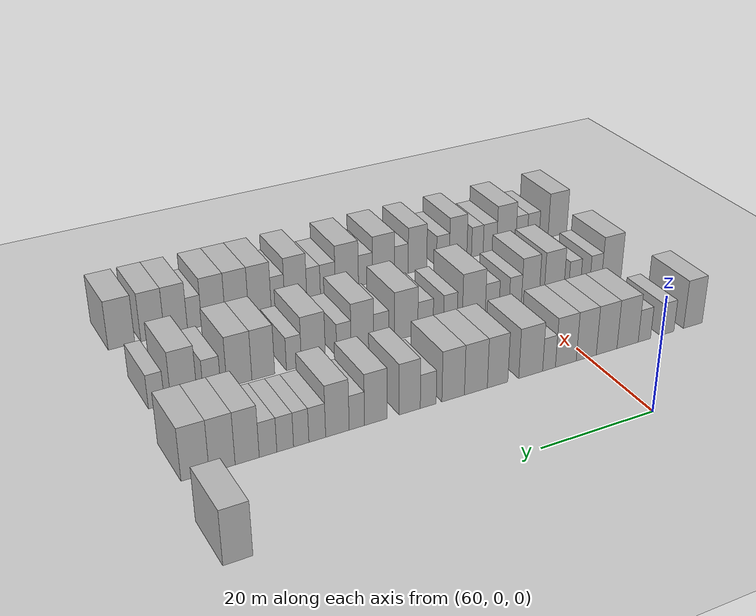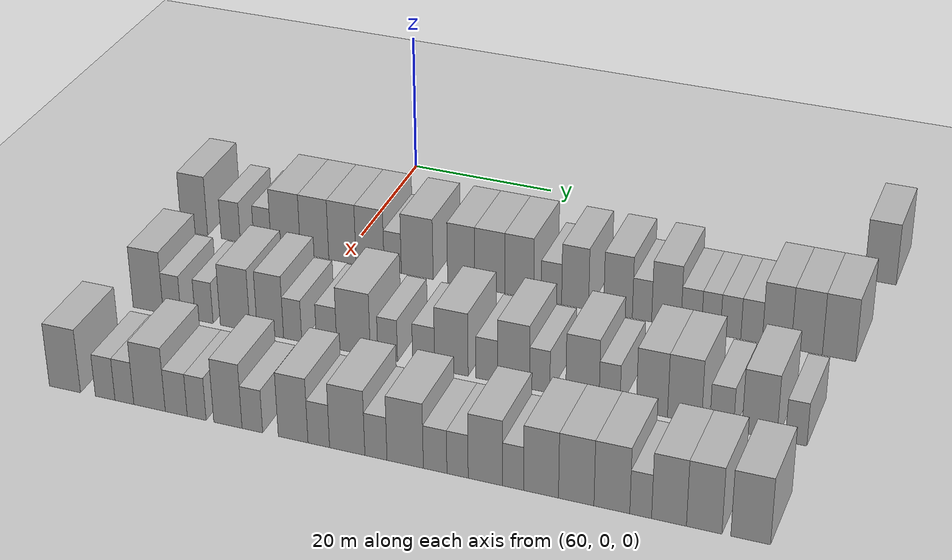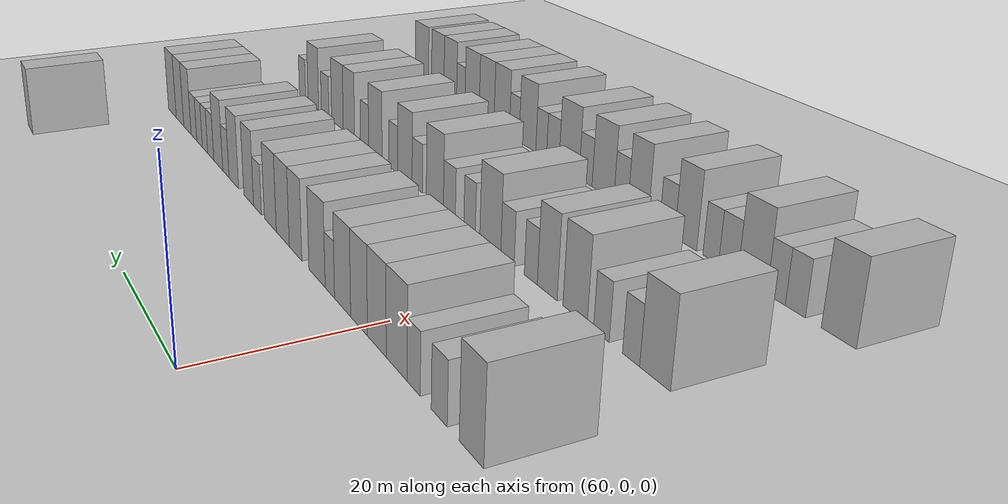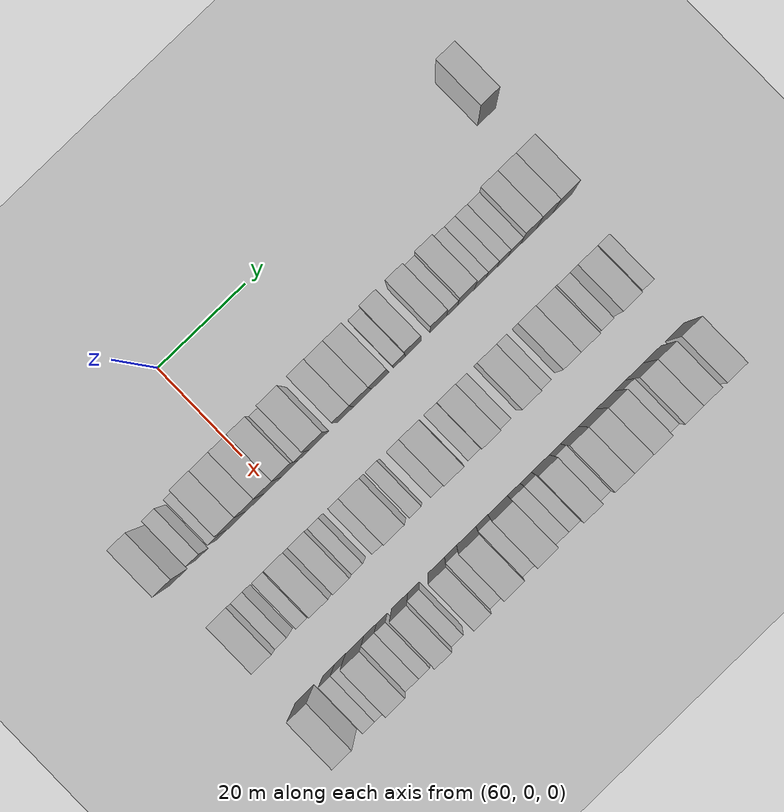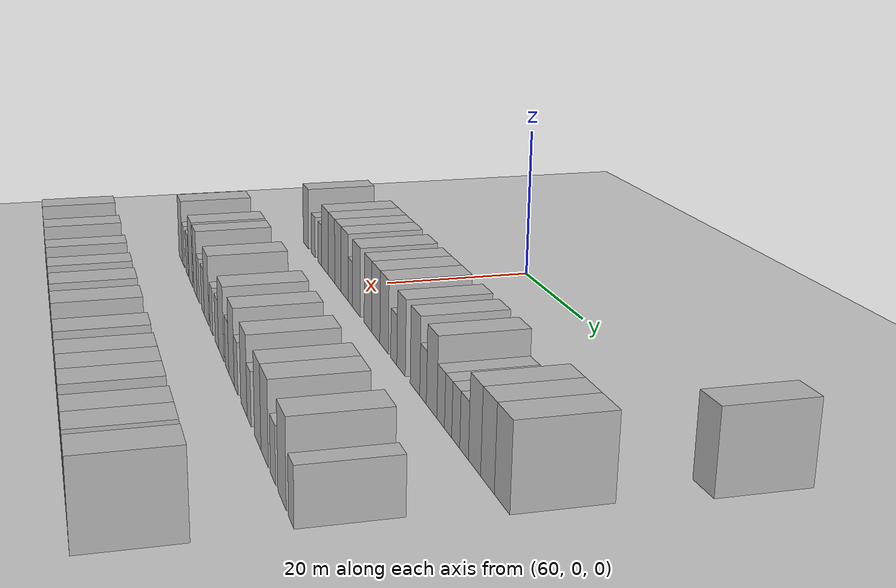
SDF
<sdf version="1.6">
 <world name="default">
  <include>
   <name>ground_plane_2</name>
   <uri>model://HANNAS_ground_plane</uri>
   <pose>100 0 0  0 0 0</pose>
  </include>
  <model name="building_458">
   <static>1</static>
   <pose>63.0000 67.6503 0 0.000000 0.000000 0.000000</pose>
   <link name="link">
    <pose>0 0 4.50 0 0 0</pose>
    <collision name="collision"><geometry><box><size>10.0000 4.1570 9.0000</size></box></geometry></collision>
    <visual name="visual">
     <cast_shadows>0</cast_shadows>
     <geometry><box><size>10.0000 4.1570 9.0000</size></box></geometry>
     <material>
      <script>
       <uri>model://HANNAS_wall/materials/scripts</uri>
       <uri>model://HANNAS_wall/materials/textures</uri>
       <name>vrc/HANNAS_wall</name>
      </script>
     </material>
    </visual>
   </link>
  </model>
  <model name="building_606">
   <static>1</static>
   <pose>82.0000 -21.2546 0 0.000000 0.000000 0.000000</pose>
   <link name="link">
    <pose>0 0 4.50 0 0 0</pose>
    <collision name="collision"><geometry><box><size>10.0000 3.9008 9.0000</size></box></geometry></collision>
    <visual name="visual">
     <cast_shadows>0</cast_shadows>
     <geometry><box><size>10.0000 3.9008 9.0000</size></box></geometry>
     <material>
      <script>
       <uri>model://HANNAS_wall/materials/scripts</uri>
       <uri>model://HANNAS_wall/materials/textures</uri>
       <name>vrc/HANNAS_wall</name>
      </script>
     </material>
    </visual>
   </link>
  </model>
  <model name="building_607">
   <static>1</static>
   <pose>82.0000 -15.8991 0 0.000000 0.000000 0.000000</pose>
   <link name="link">
    <pose>0 0 3.00 0 0 0</pose>
    <collision name="collision"><geometry><box><size>10.0000 2.8103 6.0000</size></box></geometry></collision>
    <visual name="visual">
     <cast_shadows>0</cast_shadows>
     <geometry><box><size>10.0000 2.8103 6.0000</size></box></geometry>
     <material>
      <script>
       <uri>model://HANNAS_wall/materials/scripts</uri>
       <uri>model://HANNAS_wall/materials/textures</uri>
       <name>vrc/HANNAS_wall</name>
      </script>
     </material>
    </visual>
   </link>
  </model>
  <model name="building_608">
   <static>1</static>
   <pose>82.0000 -11.2443 0 0.000000 0.000000 0.000000</pose>
   <link name="link">
    <pose>0 0 3.00 0 0 0</pose>
    <collision name="collision"><geometry><box><size>10.0000 2.4992 6.0000</size></box></geometry></collision>
    <visual name="visual">
     <cast_shadows>0</cast_shadows>
     <geometry><box><size>10.0000 2.4992 6.0000</size></box></geometry>
     <material>
      <script>
       <uri>model://HANNAS_wall/materials/scripts</uri>
       <uri>model://HANNAS_wall/materials/textures</uri>
       <name>vrc/HANNAS_wall</name>
      </script>
     </material>
    </visual>
   </link>
  </model>
  <model name="building_609">
   <static>1</static>
   <pose>82.0000 -7.8743 0 0.000000 0.000000 0.000000</pose>
   <link name="link">
    <pose>0 0 4.50 0 0 0</pose>
    <collision name="collision"><geometry><box><size>10.0000 4.2407 9.0000</size></box></geometry></collision>
    <visual name="visual">
     <cast_shadows>0</cast_shadows>
     <geometry><box><size>10.0000 4.2407 9.0000</size></box></geometry>
     <material>
      <script>
       <uri>model://HANNAS_wall/materials/scripts</uri>
       <uri>model://HANNAS_wall/materials/textures</uri>
       <name>vrc/HANNAS_wall</name>
      </script>
     </material>
    </visual>
   </link>
  </model>
  <model name="building_610">
   <static>1</static>
   <pose>82.0000 -3.7192 0 0.000000 0.000000 0.000000</pose>
   <link name="link">
    <pose>0 0 4.50 0 0 0</pose>
    <collision name="collision"><geometry><box><size>10.0000 4.0696 9.0000</size></box></geometry></collision>
    <visual name="visual">
     <cast_shadows>0</cast_shadows>
     <geometry><box><size>10.0000 4.0696 9.0000</size></box></geometry>
     <material>
      <script>
       <uri>model://HANNAS_wall/materials/scripts</uri>
       <uri>model://HANNAS_wall/materials/textures</uri>
       <name>vrc/HANNAS_wall</name>
      </script>
     </material>
    </visual>
   </link>
  </model>
  <model name="building_611">
   <static>1</static>
   <pose>82.0000 0.2580 0 0.000000 0.000000 0.000000</pose>
   <link name="link">
    <pose>0 0 4.50 0 0 0</pose>
    <collision name="collision"><geometry><box><size>10.0000 3.8847 9.0000</size></box></geometry></collision>
    <visual name="visual">
     <cast_shadows>0</cast_shadows>
     <geometry><box><size>10.0000 3.8847 9.0000</size></box></geometry>
     <material>
      <script>
       <uri>model://HANNAS_wall/materials/scripts</uri>
       <uri>model://HANNAS_wall/materials/textures</uri>
       <name>vrc/HANNAS_wall</name>
      </script>
     </material>
    </visual>
   </link>
  </model>
  <model name="building_612">
   <static>1</static>
   <pose>82.0000 4.1869 0 0.000000 0.000000 0.000000</pose>
   <link name="link">
    <pose>0 0 4.50 0 0 0</pose>
    <collision name="collision"><geometry><box><size>10.0000 3.9731 9.0000</size></box></geometry></collision>
    <visual name="visual">
     <cast_shadows>0</cast_shadows>
     <geometry><box><size>10.0000 3.9731 9.0000</size></box></geometry>
     <material>
      <script>
       <uri>model://HANNAS_wall/materials/scripts</uri>
       <uri>model://HANNAS_wall/materials/textures</uri>
       <name>vrc/HANNAS_wall</name>
      </script>
     </material>
    </visual>
   </link>
  </model>
  <model name="building_613">
   <static>1</static>
   <pose>82.0000 7.3832 0 0.000000 0.000000 0.000000</pose>
   <link name="link">
    <pose>0 0 3.00 0 0 0</pose>
    <collision name="collision"><geometry><box><size>10.0000 2.4195 6.0000</size></box></geometry></collision>
    <visual name="visual">
     <cast_shadows>0</cast_shadows>
     <geometry><box><size>10.0000 2.4195 6.0000</size></box></geometry>
     <material>
      <script>
       <uri>model://HANNAS_wall/materials/scripts</uri>
       <uri>model://HANNAS_wall/materials/textures</uri>
       <name>vrc/HANNAS_wall</name>
      </script>
     </material>
    </visual>
   </link>
  </model>
  <model name="building_614">
   <static>1</static>
   <pose>82.0000 10.8108 0 0.000000 0.000000 0.000000</pose>
   <link name="link">
    <pose>0 0 4.50 0 0 0</pose>
    <collision name="collision"><geometry><box><size>10.0000 4.4359 9.0000</size></box></geometry></collision>
    <visual name="visual">
     <cast_shadows>0</cast_shadows>
     <geometry><box><size>10.0000 4.4359 9.0000</size></box></geometry>
     <material>
      <script>
       <uri>model://HANNAS_wall/materials/scripts</uri>
       <uri>model://HANNAS_wall/materials/textures</uri>
       <name>vrc/HANNAS_wall</name>
      </script>
     </material>
    </visual>
   </link>
  </model>
  <model name="building_615">
   <static>1</static>
   <pose>82.0000 16.8968 0 0.000000 0.000000 0.000000</pose>
   <link name="link">
    <pose>0 0 4.50 0 0 0</pose>
    <collision name="collision"><geometry><box><size>10.0000 3.7361 9.0000</size></box></geometry></collision>
    <visual name="visual">
     <cast_shadows>0</cast_shadows>
     <geometry><box><size>10.0000 3.7361 9.0000</size></box></geometry>
     <material>
      <script>
       <uri>model://HANNAS_wall/materials/scripts</uri>
       <uri>model://HANNAS_wall/materials/textures</uri>
       <name>vrc/HANNAS_wall</name>
      </script>
     </material>
    </visual>
   </link>
  </model>
  <model name="building_616">
   <static>1</static>
   <pose>82.0000 20.8107 0 0.000000 0.000000 0.000000</pose>
   <link name="link">
    <pose>0 0 4.50 0 0 0</pose>
    <collision name="collision"><geometry><box><size>10.0000 4.0918 9.0000</size></box></geometry></collision>
    <visual name="visual">
     <cast_shadows>0</cast_shadows>
     <geometry><box><size>10.0000 4.0918 9.0000</size></box></geometry>
     <material>
      <script>
       <uri>model://HANNAS_wall/materials/scripts</uri>
       <uri>model://HANNAS_wall/materials/textures</uri>
       <name>vrc/HANNAS_wall</name>
      </script>
     </material>
    </visual>
   </link>
  </model>
  <model name="building_617">
   <static>1</static>
   <pose>82.0000 24.8374 0 0.000000 0.000000 0.000000</pose>
   <link name="link">
    <pose>0 0 4.50 0 0 0</pose>
    <collision name="collision"><geometry><box><size>10.0000 3.9616 9.0000</size></box></geometry></collision>
    <visual name="visual">
     <cast_shadows>0</cast_shadows>
     <geometry><box><size>10.0000 3.9616 9.0000</size></box></geometry>
     <material>
      <script>
       <uri>model://HANNAS_wall/materials/scripts</uri>
       <uri>model://HANNAS_wall/materials/textures</uri>
       <name>vrc/HANNAS_wall</name>
      </script>
     </material>
    </visual>
   </link>
  </model>
  <model name="building_618">
   <static>1</static>
   <pose>82.0000 29.1905 0 0.000000 0.000000 0.000000</pose>
   <link name="link">
    <pose>0 0 3.00 0 0 0</pose>
    <collision name="collision"><geometry><box><size>10.0000 2.7445 6.0000</size></box></geometry></collision>
    <visual name="visual">
     <cast_shadows>0</cast_shadows>
     <geometry><box><size>10.0000 2.7445 6.0000</size></box></geometry>
     <material>
      <script>
       <uri>model://HANNAS_wall/materials/scripts</uri>
       <uri>model://HANNAS_wall/materials/textures</uri>
       <name>vrc/HANNAS_wall</name>
      </script>
     </material>
    </visual>
   </link>
  </model>
  <model name="building_619">
   <static>1</static>
   <pose>82.0000 32.3657 0 0.000000 0.000000 0.000000</pose>
   <link name="link">
    <pose>0 0 4.50 0 0 0</pose>
    <collision name="collision"><geometry><box><size>10.0000 3.6060 9.0000</size></box></geometry></collision>
    <visual name="visual">
     <cast_shadows>0</cast_shadows>
     <geometry><box><size>10.0000 3.6060 9.0000</size></box></geometry>
     <material>
      <script>
       <uri>model://HANNAS_wall/materials/scripts</uri>
       <uri>model://HANNAS_wall/materials/textures</uri>
       <name>vrc/HANNAS_wall</name>
      </script>
     </material>
    </visual>
   </link>
  </model>
  <model name="building_620">
   <static>1</static>
   <pose>82.0000 38.0632 0 0.000000 0.000000 0.000000</pose>
   <link name="link">
    <pose>0 0 4.50 0 0 0</pose>
    <collision name="collision"><geometry><box><size>10.0000 3.7889 9.0000</size></box></geometry></collision>
    <visual name="visual">
     <cast_shadows>0</cast_shadows>
     <geometry><box><size>10.0000 3.7889 9.0000</size></box></geometry>
     <material>
      <script>
       <uri>model://HANNAS_wall/materials/scripts</uri>
       <uri>model://HANNAS_wall/materials/textures</uri>
       <name>vrc/HANNAS_wall</name>
      </script>
     </material>
    </visual>
   </link>
  </model>
  <model name="building_621">
   <static>1</static>
   <pose>82.0000 41.2232 0 0.000000 0.000000 0.000000</pose>
   <link name="link">
    <pose>0 0 3.00 0 0 0</pose>
    <collision name="collision"><geometry><box><size>10.0000 2.5311 6.0000</size></box></geometry></collision>
    <visual name="visual">
     <cast_shadows>0</cast_shadows>
     <geometry><box><size>10.0000 2.5311 6.0000</size></box></geometry>
     <material>
      <script>
       <uri>model://HANNAS_wall/materials/scripts</uri>
       <uri>model://HANNAS_wall/materials/textures</uri>
       <name>vrc/HANNAS_wall</name>
      </script>
     </material>
    </visual>
   </link>
  </model>
  <model name="building_622">
   <static>1</static>
   <pose>82.0000 44.4005 0 0.000000 0.000000 0.000000</pose>
   <link name="link">
    <pose>0 0 4.50 0 0 0</pose>
    <collision name="collision"><geometry><box><size>10.0000 3.8234 9.0000</size></box></geometry></collision>
    <visual name="visual">
     <cast_shadows>0</cast_shadows>
     <geometry><box><size>10.0000 3.8234 9.0000</size></box></geometry>
     <material>
      <script>
       <uri>model://HANNAS_wall/materials/scripts</uri>
       <uri>model://HANNAS_wall/materials/textures</uri>
       <name>vrc/HANNAS_wall</name>
      </script>
     </material>
    </visual>
   </link>
  </model>
  <model name="building_623">
   <static>1</static>
   <pose>82.0000 47.6516 0 0.000000 0.000000 0.000000</pose>
   <link name="link">
    <pose>0 0 3.00 0 0 0</pose>
    <collision name="collision"><geometry><box><size>10.0000 2.6788 6.0000</size></box></geometry></collision>
    <visual name="visual">
     <cast_shadows>0</cast_shadows>
     <geometry><box><size>10.0000 2.6788 6.0000</size></box></geometry>
     <material>
      <script>
       <uri>model://HANNAS_wall/materials/scripts</uri>
       <uri>model://HANNAS_wall/materials/textures</uri>
       <name>vrc/HANNAS_wall</name>
      </script>
     </material>
    </visual>
   </link>
  </model>
  <model name="building_624">
   <static>1</static>
   <pose>82.0000 50.2075 0 0.000000 0.000000 0.000000</pose>
   <link name="link">
    <pose>0 0 3.00 0 0 0</pose>
    <collision name="collision"><geometry><box><size>10.0000 2.4330 6.0000</size></box></geometry></collision>
    <visual name="visual">
     <cast_shadows>0</cast_shadows>
     <geometry><box><size>10.0000 2.4330 6.0000</size></box></geometry>
     <material>
      <script>
       <uri>model://HANNAS_wall/materials/scripts</uri>
       <uri>model://HANNAS_wall/materials/textures</uri>
       <name>vrc/HANNAS_wall</name>
      </script>
     </material>
    </visual>
   </link>
  </model>
  <model name="building_625">
   <static>1</static>
   <pose>82.0000 52.7319 0 0.000000 0.000000 0.000000</pose>
   <link name="link">
    <pose>0 0 3.00 0 0 0</pose>
    <collision name="collision"><geometry><box><size>10.0000 2.6159 6.0000</size></box></geometry></collision>
    <visual name="visual">
     <cast_shadows>0</cast_shadows>
     <geometry><box><size>10.0000 2.6159 6.0000</size></box></geometry>
     <material>
      <script>
       <uri>model://HANNAS_wall/materials/scripts</uri>
       <uri>model://HANNAS_wall/materials/textures</uri>
       <name>vrc/HANNAS_wall</name>
      </script>
     </material>
    </visual>
   </link>
  </model>
  <model name="building_626">
   <static>1</static>
   <pose>82.0000 55.4061 0 0.000000 0.000000 0.000000</pose>
   <link name="link">
    <pose>0 0 3.00 0 0 0</pose>
    <collision name="collision"><geometry><box><size>10.0000 2.7324 6.0000</size></box></geometry></collision>
    <visual name="visual">
     <cast_shadows>0</cast_shadows>
     <geometry><box><size>10.0000 2.7324 6.0000</size></box></geometry>
     <material>
      <script>
       <uri>model://HANNAS_wall/materials/scripts</uri>
       <uri>model://HANNAS_wall/materials/textures</uri>
       <name>vrc/HANNAS_wall</name>
      </script>
     </material>
    </visual>
   </link>
  </model>
  <model name="building_627">
   <static>1</static>
   <pose>82.0000 58.6127 0 0.000000 0.000000 0.000000</pose>
   <link name="link">
    <pose>0 0 4.50 0 0 0</pose>
    <collision name="collision"><geometry><box><size>10.0000 3.6809 9.0000</size></box></geometry></collision>
    <visual name="visual">
     <cast_shadows>0</cast_shadows>
     <geometry><box><size>10.0000 3.6809 9.0000</size></box></geometry>
     <material>
      <script>
       <uri>model://HANNAS_wall/materials/scripts</uri>
       <uri>model://HANNAS_wall/materials/textures</uri>
       <name>vrc/HANNAS_wall</name>
      </script>
     </material>
    </visual>
   </link>
  </model>
  <model name="building_628">
   <static>1</static>
   <pose>82.0000 62.4074 0 0.000000 0.000000 0.000000</pose>
   <link name="link">
    <pose>0 0 4.50 0 0 0</pose>
    <collision name="collision"><geometry><box><size>10.0000 3.9086 9.0000</size></box></geometry></collision>
    <visual name="visual">
     <cast_shadows>0</cast_shadows>
     <geometry><box><size>10.0000 3.9086 9.0000</size></box></geometry>
     <material>
      <script>
       <uri>model://HANNAS_wall/materials/scripts</uri>
       <uri>model://HANNAS_wall/materials/textures</uri>
       <name>vrc/HANNAS_wall</name>
      </script>
     </material>
    </visual>
   </link>
  </model>
  <model name="building_629">
   <static>1</static>
   <pose>82.0000 66.4455 0 0.000000 0.000000 0.000000</pose>
   <link name="link">
    <pose>0 0 4.50 0 0 0</pose>
    <collision name="collision"><geometry><box><size>10.0000 4.1675 9.0000</size></box></geometry></collision>
    <visual name="visual">
     <cast_shadows>0</cast_shadows>
     <geometry><box><size>10.0000 4.1675 9.0000</size></box></geometry>
     <material>
      <script>
       <uri>model://HANNAS_wall/materials/scripts</uri>
       <uri>model://HANNAS_wall/materials/textures</uri>
       <name>vrc/HANNAS_wall</name>
      </script>
     </material>
    </visual>
   </link>
  </model>
  <model name="building_790">
   <static>1</static>
   <pose>101.0000 -18.3477 0 0.000000 0.000000 0.000000</pose>
   <link name="link">
    <pose>0 0 4.50 0 0 0</pose>
    <collision name="collision"><geometry><box><size>10.0000 4.2520 9.0000</size></box></geometry></collision>
    <visual name="visual">
     <cast_shadows>0</cast_shadows>
     <geometry><box><size>10.0000 4.2520 9.0000</size></box></geometry>
     <material>
      <script>
       <uri>model://HANNAS_wall/materials/scripts</uri>
       <uri>model://HANNAS_wall/materials/textures</uri>
       <name>vrc/HANNAS_wall</name>
      </script>
     </material>
    </visual>
   </link>
  </model>
  <model name="building_791">
   <static>1</static>
   <pose>101.0000 -14.9692 0 0.000000 0.000000 0.000000</pose>
   <link name="link">
    <pose>0 0 3.00 0 0 0</pose>
    <collision name="collision"><geometry><box><size>10.0000 2.5051 6.0000</size></box></geometry></collision>
    <visual name="visual">
     <cast_shadows>0</cast_shadows>
     <geometry><box><size>10.0000 2.5051 6.0000</size></box></geometry>
     <material>
      <script>
       <uri>model://HANNAS_wall/materials/scripts</uri>
       <uri>model://HANNAS_wall/materials/textures</uri>
       <name>vrc/HANNAS_wall</name>
      </script>
     </material>
    </visual>
   </link>
  </model>
  <model name="building_792">
   <static>1</static>
   <pose>101.0000 -10.4750 0 0.000000 0.000000 0.000000</pose>
   <link name="link">
    <pose>0 0 3.00 0 0 0</pose>
    <collision name="collision"><geometry><box><size>10.0000 2.4832 6.0000</size></box></geometry></collision>
    <visual name="visual">
     <cast_shadows>0</cast_shadows>
     <geometry><box><size>10.0000 2.4832 6.0000</size></box></geometry>
     <material>
      <script>
       <uri>model://HANNAS_wall/materials/scripts</uri>
       <uri>model://HANNAS_wall/materials/textures</uri>
       <name>vrc/HANNAS_wall</name>
      </script>
     </material>
    </visual>
   </link>
  </model>
  <model name="building_793">
   <static>1</static>
   <pose>101.0000 -6.1856 0 0.000000 0.000000 0.000000</pose>
   <link name="link">
    <pose>0 0 4.50 0 0 0</pose>
    <collision name="collision"><geometry><box><size>10.0000 4.0957 9.0000</size></box></geometry></collision>
    <visual name="visual">
     <cast_shadows>0</cast_shadows>
     <geometry><box><size>10.0000 4.0957 9.0000</size></box></geometry>
     <material>
      <script>
       <uri>model://HANNAS_wall/materials/scripts</uri>
       <uri>model://HANNAS_wall/materials/textures</uri>
       <name>vrc/HANNAS_wall</name>
      </script>
     </material>
    </visual>
   </link>
  </model>
  <model name="building_794">
   <static>1</static>
   <pose>101.0000 -1.3371 0 0.000000 0.000000 0.000000</pose>
   <link name="link">
    <pose>0 0 4.50 0 0 0</pose>
    <collision name="collision"><geometry><box><size>10.0000 3.6012 9.0000</size></box></geometry></collision>
    <visual name="visual">
     <cast_shadows>0</cast_shadows>
     <geometry><box><size>10.0000 3.6012 9.0000</size></box></geometry>
     <material>
      <script>
       <uri>model://HANNAS_wall/materials/scripts</uri>
       <uri>model://HANNAS_wall/materials/textures</uri>
       <name>vrc/HANNAS_wall</name>
      </script>
     </material>
    </visual>
   </link>
  </model>
  <model name="building_795">
   <static>1</static>
   <pose>101.0000 1.7011 0 0.000000 0.000000 0.000000</pose>
   <link name="link">
    <pose>0 0 3.00 0 0 0</pose>
    <collision name="collision"><geometry><box><size>10.0000 2.4750 6.0000</size></box></geometry></collision>
    <visual name="visual">
     <cast_shadows>0</cast_shadows>
     <geometry><box><size>10.0000 2.4750 6.0000</size></box></geometry>
     <material>
      <script>
       <uri>model://HANNAS_wall/materials/scripts</uri>
       <uri>model://HANNAS_wall/materials/textures</uri>
       <name>vrc/HANNAS_wall</name>
      </script>
     </material>
    </visual>
   </link>
  </model>
  <model name="building_796">
   <static>1</static>
   <pose>101.0000 6.3035 0 0.000000 0.000000 0.000000</pose>
   <link name="link">
    <pose>0 0 3.00 0 0 0</pose>
    <collision name="collision"><geometry><box><size>10.0000 2.7299 6.0000</size></box></geometry></collision>
    <visual name="visual">
     <cast_shadows>0</cast_shadows>
     <geometry><box><size>10.0000 2.7299 6.0000</size></box></geometry>
     <material>
      <script>
       <uri>model://HANNAS_wall/materials/scripts</uri>
       <uri>model://HANNAS_wall/materials/textures</uri>
       <name>vrc/HANNAS_wall</name>
      </script>
     </material>
    </visual>
   </link>
  </model>
  <model name="building_797">
   <static>1</static>
   <pose>101.0000 9.9056 0 0.000000 0.000000 0.000000</pose>
   <link name="link">
    <pose>0 0 4.50 0 0 0</pose>
    <collision name="collision"><geometry><box><size>10.0000 4.4742 9.0000</size></box></geometry></collision>
    <visual name="visual">
     <cast_shadows>0</cast_shadows>
     <geometry><box><size>10.0000 4.4742 9.0000</size></box></geometry>
     <material>
      <script>
       <uri>model://HANNAS_wall/materials/scripts</uri>
       <uri>model://HANNAS_wall/materials/textures</uri>
       <name>vrc/HANNAS_wall</name>
      </script>
     </material>
    </visual>
   </link>
  </model>
  <model name="building_798">
   <static>1</static>
   <pose>101.0000 14.4424 0 0.000000 0.000000 0.000000</pose>
   <link name="link">
    <pose>0 0 3.00 0 0 0</pose>
    <collision name="collision"><geometry><box><size>10.0000 2.5995 6.0000</size></box></geometry></collision>
    <visual name="visual">
     <cast_shadows>0</cast_shadows>
     <geometry><box><size>10.0000 2.5995 6.0000</size></box></geometry>
     <material>
      <script>
       <uri>model://HANNAS_wall/materials/scripts</uri>
       <uri>model://HANNAS_wall/materials/textures</uri>
       <name>vrc/HANNAS_wall</name>
      </script>
     </material>
    </visual>
   </link>
  </model>
  <model name="building_799">
   <static>1</static>
   <pose>101.0000 19.1825 0 0.000000 0.000000 0.000000</pose>
   <link name="link">
    <pose>0 0 3.00 0 0 0</pose>
    <collision name="collision"><geometry><box><size>10.0000 2.8809 6.0000</size></box></geometry></collision>
    <visual name="visual">
     <cast_shadows>0</cast_shadows>
     <geometry><box><size>10.0000 2.8809 6.0000</size></box></geometry>
     <material>
      <script>
       <uri>model://HANNAS_wall/materials/scripts</uri>
       <uri>model://HANNAS_wall/materials/textures</uri>
       <name>vrc/HANNAS_wall</name>
      </script>
     </material>
    </visual>
   </link>
  </model>
  <model name="building_800">
   <static>1</static>
   <pose>101.0000 22.7941 0 0.000000 0.000000 0.000000</pose>
   <link name="link">
    <pose>0 0 4.50 0 0 0</pose>
    <collision name="collision"><geometry><box><size>10.0000 4.3423 9.0000</size></box></geometry></collision>
    <visual name="visual">
     <cast_shadows>0</cast_shadows>
     <geometry><box><size>10.0000 4.3423 9.0000</size></box></geometry>
     <material>
      <script>
       <uri>model://HANNAS_wall/materials/scripts</uri>
       <uri>model://HANNAS_wall/materials/textures</uri>
       <name>vrc/HANNAS_wall</name>
      </script>
     </material>
    </visual>
   </link>
  </model>
  <model name="building_801">
   <static>1</static>
   <pose>101.0000 27.3637 0 0.000000 0.000000 0.000000</pose>
   <link name="link">
    <pose>0 0 3.00 0 0 0</pose>
    <collision name="collision"><geometry><box><size>10.0000 2.7969 6.0000</size></box></geometry></collision>
    <visual name="visual">
     <cast_shadows>0</cast_shadows>
     <geometry><box><size>10.0000 2.7969 6.0000</size></box></geometry>
     <material>
      <script>
       <uri>model://HANNAS_wall/materials/scripts</uri>
       <uri>model://HANNAS_wall/materials/textures</uri>
       <name>vrc/HANNAS_wall</name>
      </script>
     </material>
    </visual>
   </link>
  </model>
  <model name="building_802">
   <static>1</static>
   <pose>101.0000 30.8039 0 0.000000 0.000000 0.000000</pose>
   <link name="link">
    <pose>0 0 4.50 0 0 0</pose>
    <collision name="collision"><geometry><box><size>10.0000 4.0835 9.0000</size></box></geometry></collision>
    <visual name="visual">
     <cast_shadows>0</cast_shadows>
     <geometry><box><size>10.0000 4.0835 9.0000</size></box></geometry>
     <material>
      <script>
       <uri>model://HANNAS_wall/materials/scripts</uri>
       <uri>model://HANNAS_wall/materials/textures</uri>
       <name>vrc/HANNAS_wall</name>
      </script>
     </material>
    </visual>
   </link>
  </model>
  <model name="building_803">
   <static>1</static>
   <pose>101.0000 34.1363 0 0.000000 0.000000 0.000000</pose>
   <link name="link">
    <pose>0 0 3.00 0 0 0</pose>
    <collision name="collision"><geometry><box><size>10.0000 2.5813 6.0000</size></box></geometry></collision>
    <visual name="visual">
     <cast_shadows>0</cast_shadows>
     <geometry><box><size>10.0000 2.5813 6.0000</size></box></geometry>
     <material>
      <script>
       <uri>model://HANNAS_wall/materials/scripts</uri>
       <uri>model://HANNAS_wall/materials/textures</uri>
       <name>vrc/HANNAS_wall</name>
      </script>
     </material>
    </visual>
   </link>
  </model>
  <model name="building_804">
   <static>1</static>
   <pose>101.0000 39.5192 0 0.000000 0.000000 0.000000</pose>
   <link name="link">
    <pose>0 0 4.50 0 0 0</pose>
    <collision name="collision"><geometry><box><size>10.0000 4.1844 9.0000</size></box></geometry></collision>
    <visual name="visual">
     <cast_shadows>0</cast_shadows>
     <geometry><box><size>10.0000 4.1844 9.0000</size></box></geometry>
     <material>
      <script>
       <uri>model://HANNAS_wall/materials/scripts</uri>
       <uri>model://HANNAS_wall/materials/textures</uri>
       <name>vrc/HANNAS_wall</name>
      </script>
     </material>
    </visual>
   </link>
  </model>
  <model name="building_805">
   <static>1</static>
   <pose>101.0000 42.9150 0 0.000000 0.000000 0.000000</pose>
   <link name="link">
    <pose>0 0 3.00 0 0 0</pose>
    <collision name="collision"><geometry><box><size>10.0000 2.6073 6.0000</size></box></geometry></collision>
    <visual name="visual">
     <cast_shadows>0</cast_shadows>
     <geometry><box><size>10.0000 2.6073 6.0000</size></box></geometry>
     <material>
      <script>
       <uri>model://HANNAS_wall/materials/scripts</uri>
       <uri>model://HANNAS_wall/materials/textures</uri>
       <name>vrc/HANNAS_wall</name>
      </script>
     </material>
    </visual>
   </link>
  </model>
  <model name="building_806">
   <static>1</static>
   <pose>101.0000 48.1481 0 0.000000 0.000000 0.000000</pose>
   <link name="link">
    <pose>0 0 4.50 0 0 0</pose>
    <collision name="collision"><geometry><box><size>10.0000 3.8589 9.0000</size></box></geometry></collision>
    <visual name="visual">
     <cast_shadows>0</cast_shadows>
     <geometry><box><size>10.0000 3.8589 9.0000</size></box></geometry>
     <material>
      <script>
       <uri>model://HANNAS_wall/materials/scripts</uri>
       <uri>model://HANNAS_wall/materials/textures</uri>
       <name>vrc/HANNAS_wall</name>
      </script>
     </material>
    </visual>
   </link>
  </model>
  <model name="building_807">
   <static>1</static>
   <pose>101.0000 52.1614 0 0.000000 0.000000 0.000000</pose>
   <link name="link">
    <pose>0 0 4.50 0 0 0</pose>
    <collision name="collision"><geometry><box><size>10.0000 4.1678 9.0000</size></box></geometry></collision>
    <visual name="visual">
     <cast_shadows>0</cast_shadows>
     <geometry><box><size>10.0000 4.1678 9.0000</size></box></geometry>
     <material>
      <script>
       <uri>model://HANNAS_wall/materials/scripts</uri>
       <uri>model://HANNAS_wall/materials/textures</uri>
       <name>vrc/HANNAS_wall</name>
      </script>
     </material>
    </visual>
   </link>
  </model>
  <model name="building_808">
   <static>1</static>
   <pose>101.0000 56.6790 0 0.000000 0.000000 0.000000</pose>
   <link name="link">
    <pose>0 0 3.00 0 0 0</pose>
    <collision name="collision"><geometry><box><size>10.0000 2.8674 6.0000</size></box></geometry></collision>
    <visual name="visual">
     <cast_shadows>0</cast_shadows>
     <geometry><box><size>10.0000 2.8674 6.0000</size></box></geometry>
     <material>
      <script>
       <uri>model://HANNAS_wall/materials/scripts</uri>
       <uri>model://HANNAS_wall/materials/textures</uri>
       <name>vrc/HANNAS_wall</name>
      </script>
     </material>
    </visual>
   </link>
  </model>
  <model name="building_809">
   <static>1</static>
   <pose>101.0000 61.2128 0 0.000000 0.000000 0.000000</pose>
   <link name="link">
    <pose>0 0 4.50 0 0 0</pose>
    <collision name="collision"><geometry><box><size>10.0000 4.2002 9.0000</size></box></geometry></collision>
    <visual name="visual">
     <cast_shadows>0</cast_shadows>
     <geometry><box><size>10.0000 4.2002 9.0000</size></box></geometry>
     <material>
      <script>
       <uri>model://HANNAS_wall/materials/scripts</uri>
       <uri>model://HANNAS_wall/materials/textures</uri>
       <name>vrc/HANNAS_wall</name>
      </script>
     </material>
    </visual>
   </link>
  </model>
  <model name="building_810">
   <static>1</static>
   <pose>101.0000 65.5942 0 0.000000 0.000000 0.000000</pose>
   <link name="link">
    <pose>0 0 3.00 0 0 0</pose>
    <collision name="collision"><geometry><box><size>10.0000 2.5627 6.0000</size></box></geometry></collision>
    <visual name="visual">
     <cast_shadows>0</cast_shadows>
     <geometry><box><size>10.0000 2.5627 6.0000</size></box></geometry>
     <material>
      <script>
       <uri>model://HANNAS_wall/materials/scripts</uri>
       <uri>model://HANNAS_wall/materials/textures</uri>
       <name>vrc/HANNAS_wall</name>
      </script>
     </material>
    </visual>
   </link>
  </model>
  <model name="building_957">
   <static>1</static>
   <pose>120.0000 -19.6756 0 0.000000 0.000000 0.000000</pose>
   <link name="link">
    <pose>0 0 4.50 0 0 0</pose>
    <collision name="collision"><geometry><box><size>10.0000 4.2132 9.0000</size></box></geometry></collision>
    <visual name="visual">
     <cast_shadows>0</cast_shadows>
     <geometry><box><size>10.0000 4.2132 9.0000</size></box></geometry>
     <material>
      <script>
       <uri>model://HANNAS_wall/materials/scripts</uri>
       <uri>model://HANNAS_wall/materials/textures</uri>
       <name>vrc/HANNAS_wall</name>
      </script>
     </material>
    </visual>
   </link>
  </model>
  <model name="building_958">
   <static>1</static>
   <pose>120.0000 -14.2486 0 0.000000 0.000000 0.000000</pose>
   <link name="link">
    <pose>0 0 3.00 0 0 0</pose>
    <collision name="collision"><geometry><box><size>10.0000 2.6409 6.0000</size></box></geometry></collision>
    <visual name="visual">
     <cast_shadows>0</cast_shadows>
     <geometry><box><size>10.0000 2.6409 6.0000</size></box></geometry>
     <material>
      <script>
       <uri>model://HANNAS_wall/materials/scripts</uri>
       <uri>model://HANNAS_wall/materials/textures</uri>
       <name>vrc/HANNAS_wall</name>
      </script>
     </material>
    </visual>
   </link>
  </model>
  <model name="building_959">
   <static>1</static>
   <pose>120.0000 -11.6679 0 0.000000 0.000000 0.000000</pose>
   <link name="link">
    <pose>0 0 3.00 0 0 0</pose>
    <collision name="collision"><geometry><box><size>10.0000 2.5207 6.0000</size></box></geometry></collision>
    <visual name="visual">
     <cast_shadows>0</cast_shadows>
     <geometry><box><size>10.0000 2.5207 6.0000</size></box></geometry>
     <material>
      <script>
       <uri>model://HANNAS_wall/materials/scripts</uri>
       <uri>model://HANNAS_wall/materials/textures</uri>
       <name>vrc/HANNAS_wall</name>
      </script>
     </material>
    </visual>
   </link>
  </model>
  <model name="building_960">
   <static>1</static>
   <pose>120.0000 -8.3268 0 0.000000 0.000000 0.000000</pose>
   <link name="link">
    <pose>0 0 4.50 0 0 0</pose>
    <collision name="collision"><geometry><box><size>10.0000 4.1615 9.0000</size></box></geometry></collision>
    <visual name="visual">
     <cast_shadows>0</cast_shadows>
     <geometry><box><size>10.0000 4.1615 9.0000</size></box></geometry>
     <material>
      <script>
       <uri>model://HANNAS_wall/materials/scripts</uri>
       <uri>model://HANNAS_wall/materials/textures</uri>
       <name>vrc/HANNAS_wall</name>
      </script>
     </material>
    </visual>
   </link>
  </model>
  <model name="building_961">
   <static>1</static>
   <pose>120.0000 -4.8008 0 0.000000 0.000000 0.000000</pose>
   <link name="link">
    <pose>0 0 3.00 0 0 0</pose>
    <collision name="collision"><geometry><box><size>10.0000 2.8905 6.0000</size></box></geometry></collision>
    <visual name="visual">
     <cast_shadows>0</cast_shadows>
     <geometry><box><size>10.0000 2.8905 6.0000</size></box></geometry>
     <material>
      <script>
       <uri>model://HANNAS_wall/materials/scripts</uri>
       <uri>model://HANNAS_wall/materials/textures</uri>
       <name>vrc/HANNAS_wall</name>
      </script>
     </material>
    </visual>
   </link>
  </model>
  <model name="building_962">
   <static>1</static>
   <pose>120.0000 -2.1224 0 0.000000 0.000000 0.000000</pose>
   <link name="link">
    <pose>0 0 3.00 0 0 0</pose>
    <collision name="collision"><geometry><box><size>10.0000 2.4662 6.0000</size></box></geometry></collision>
    <visual name="visual">
     <cast_shadows>0</cast_shadows>
     <geometry><box><size>10.0000 2.4662 6.0000</size></box></geometry>
     <material>
      <script>
       <uri>model://HANNAS_wall/materials/scripts</uri>
       <uri>model://HANNAS_wall/materials/textures</uri>
       <name>vrc/HANNAS_wall</name>
      </script>
     </material>
    </visual>
   </link>
  </model>
  <model name="building_963">
   <static>1</static>
   <pose>120.0000 1.9425 0 0.000000 0.000000 0.000000</pose>
   <link name="link">
    <pose>0 0 4.50 0 0 0</pose>
    <collision name="collision"><geometry><box><size>10.0000 3.6637 9.0000</size></box></geometry></collision>
    <visual name="visual">
     <cast_shadows>0</cast_shadows>
     <geometry><box><size>10.0000 3.6637 9.0000</size></box></geometry>
     <material>
      <script>
       <uri>model://HANNAS_wall/materials/scripts</uri>
       <uri>model://HANNAS_wall/materials/textures</uri>
       <name>vrc/HANNAS_wall</name>
      </script>
     </material>
    </visual>
   </link>
  </model>
  <model name="building_964">
   <static>1</static>
   <pose>120.0000 5.1042 0 0.000000 0.000000 0.000000</pose>
   <link name="link">
    <pose>0 0 3.00 0 0 0</pose>
    <collision name="collision"><geometry><box><size>10.0000 2.6596 6.0000</size></box></geometry></collision>
    <visual name="visual">
     <cast_shadows>0</cast_shadows>
     <geometry><box><size>10.0000 2.6596 6.0000</size></box></geometry>
     <material>
      <script>
       <uri>model://HANNAS_wall/materials/scripts</uri>
       <uri>model://HANNAS_wall/materials/textures</uri>
       <name>vrc/HANNAS_wall</name>
      </script>
     </material>
    </visual>
   </link>
  </model>
  <model name="building_965">
   <static>1</static>
   <pose>120.0000 10.3248 0 0.000000 0.000000 0.000000</pose>
   <link name="link">
    <pose>0 0 4.50 0 0 0</pose>
    <collision name="collision"><geometry><box><size>10.0000 3.7816 9.0000</size></box></geometry></collision>
    <visual name="visual">
     <cast_shadows>0</cast_shadows>
     <geometry><box><size>10.0000 3.7816 9.0000</size></box></geometry>
     <material>
      <script>
       <uri>model://HANNAS_wall/materials/scripts</uri>
       <uri>model://HANNAS_wall/materials/textures</uri>
       <name>vrc/HANNAS_wall</name>
      </script>
     </material>
    </visual>
   </link>
  </model>
  <model name="building_966">
   <static>1</static>
   <pose>120.0000 13.5783 0 0.000000 0.000000 0.000000</pose>
   <link name="link">
    <pose>0 0 3.00 0 0 0</pose>
    <collision name="collision"><geometry><box><size>10.0000 2.7254 6.0000</size></box></geometry></collision>
    <visual name="visual">
     <cast_shadows>0</cast_shadows>
     <geometry><box><size>10.0000 2.7254 6.0000</size></box></geometry>
     <material>
      <script>
       <uri>model://HANNAS_wall/materials/scripts</uri>
       <uri>model://HANNAS_wall/materials/textures</uri>
       <name>vrc/HANNAS_wall</name>
      </script>
     </material>
    </visual>
   </link>
  </model>
  <model name="building_967">
   <static>1</static>
   <pose>120.0000 17.1554 0 0.000000 0.000000 0.000000</pose>
   <link name="link">
    <pose>0 0 4.50 0 0 0</pose>
    <collision name="collision"><geometry><box><size>10.0000 4.4289 9.0000</size></box></geometry></collision>
    <visual name="visual">
     <cast_shadows>0</cast_shadows>
     <geometry><box><size>10.0000 4.4289 9.0000</size></box></geometry>
     <material>
      <script>
       <uri>model://HANNAS_wall/materials/scripts</uri>
       <uri>model://HANNAS_wall/materials/textures</uri>
       <name>vrc/HANNAS_wall</name>
      </script>
     </material>
    </visual>
   </link>
  </model>
  <model name="building_968">
   <static>1</static>
   <pose>120.0000 20.7475 0 0.000000 0.000000 0.000000</pose>
   <link name="link">
    <pose>0 0 3.00 0 0 0</pose>
    <collision name="collision"><geometry><box><size>10.0000 2.7553 6.0000</size></box></geometry></collision>
    <visual name="visual">
     <cast_shadows>0</cast_shadows>
     <geometry><box><size>10.0000 2.7553 6.0000</size></box></geometry>
     <material>
      <script>
       <uri>model://HANNAS_wall/materials/scripts</uri>
       <uri>model://HANNAS_wall/materials/textures</uri>
       <name>vrc/HANNAS_wall</name>
      </script>
     </material>
    </visual>
   </link>
  </model>
  <model name="building_969">
   <static>1</static>
   <pose>120.0000 24.3669 0 0.000000 0.000000 0.000000</pose>
   <link name="link">
    <pose>0 0 4.50 0 0 0</pose>
    <collision name="collision"><geometry><box><size>10.0000 4.4835 9.0000</size></box></geometry></collision>
    <visual name="visual">
     <cast_shadows>0</cast_shadows>
     <geometry><box><size>10.0000 4.4835 9.0000</size></box></geometry>
     <material>
      <script>
       <uri>model://HANNAS_wall/materials/scripts</uri>
       <uri>model://HANNAS_wall/materials/textures</uri>
       <name>vrc/HANNAS_wall</name>
      </script>
     </material>
    </visual>
   </link>
  </model>
  <model name="building_970">
   <static>1</static>
   <pose>120.0000 28.0488 0 0.000000 0.000000 0.000000</pose>
   <link name="link">
    <pose>0 0 3.00 0 0 0</pose>
    <collision name="collision"><geometry><box><size>10.0000 2.8802 6.0000</size></box></geometry></collision>
    <visual name="visual">
     <cast_shadows>0</cast_shadows>
     <geometry><box><size>10.0000 2.8802 6.0000</size></box></geometry>
     <material>
      <script>
       <uri>model://HANNAS_wall/materials/scripts</uri>
       <uri>model://HANNAS_wall/materials/textures</uri>
       <name>vrc/HANNAS_wall</name>
      </script>
     </material>
    </visual>
   </link>
  </model>
  <model name="building_971">
   <static>1</static>
   <pose>120.0000 30.7795 0 0.000000 0.000000 0.000000</pose>
   <link name="link">
    <pose>0 0 3.00 0 0 0</pose>
    <collision name="collision"><geometry><box><size>10.0000 2.5812 6.0000</size></box></geometry></collision>
    <visual name="visual">
     <cast_shadows>0</cast_shadows>
     <geometry><box><size>10.0000 2.5812 6.0000</size></box></geometry>
     <material>
      <script>
       <uri>model://HANNAS_wall/materials/scripts</uri>
       <uri>model://HANNAS_wall/materials/textures</uri>
       <name>vrc/HANNAS_wall</name>
      </script>
     </material>
    </visual>
   </link>
  </model>
  <model name="building_972">
   <static>1</static>
   <pose>120.0000 34.1424 0 0.000000 0.000000 0.000000</pose>
   <link name="link">
    <pose>0 0 4.50 0 0 0</pose>
    <collision name="collision"><geometry><box><size>10.0000 4.1445 9.0000</size></box></geometry></collision>
    <visual name="visual">
     <cast_shadows>0</cast_shadows>
     <geometry><box><size>10.0000 4.1445 9.0000</size></box></geometry>
     <material>
      <script>
       <uri>model://HANNAS_wall/materials/scripts</uri>
       <uri>model://HANNAS_wall/materials/textures</uri>
       <name>vrc/HANNAS_wall</name>
      </script>
     </material>
    </visual>
   </link>
  </model>
  <model name="building_973">
   <static>1</static>
   <pose>120.0000 37.4750 0 0.000000 0.000000 0.000000</pose>
   <link name="link">
    <pose>0 0 3.00 0 0 0</pose>
    <collision name="collision"><geometry><box><size>10.0000 2.5207 6.0000</size></box></geometry></collision>
    <visual name="visual">
     <cast_shadows>0</cast_shadows>
     <geometry><box><size>10.0000 2.5207 6.0000</size></box></geometry>
     <material>
      <script>
       <uri>model://HANNAS_wall/materials/scripts</uri>
       <uri>model://HANNAS_wall/materials/textures</uri>
       <name>vrc/HANNAS_wall</name>
      </script>
     </material>
    </visual>
   </link>
  </model>
  <model name="building_974">
   <static>1</static>
   <pose>120.0000 40.8128 0 0.000000 0.000000 0.000000</pose>
   <link name="link">
    <pose>0 0 4.50 0 0 0</pose>
    <collision name="collision"><geometry><box><size>10.0000 4.1550 9.0000</size></box></geometry></collision>
    <visual name="visual">
     <cast_shadows>0</cast_shadows>
     <geometry><box><size>10.0000 4.1550 9.0000</size></box></geometry>
     <material>
      <script>
       <uri>model://HANNAS_wall/materials/scripts</uri>
       <uri>model://HANNAS_wall/materials/textures</uri>
       <name>vrc/HANNAS_wall</name>
      </script>
     </material>
    </visual>
   </link>
  </model>
  <model name="building_975">
   <static>1</static>
   <pose>120.0000 44.9779 0 0.000000 0.000000 0.000000</pose>
   <link name="link">
    <pose>0 0 4.50 0 0 0</pose>
    <collision name="collision"><geometry><box><size>10.0000 4.1752 9.0000</size></box></geometry></collision>
    <visual name="visual">
     <cast_shadows>0</cast_shadows>
     <geometry><box><size>10.0000 4.1752 9.0000</size></box></geometry>
     <material>
      <script>
       <uri>model://HANNAS_wall/materials/scripts</uri>
       <uri>model://HANNAS_wall/materials/textures</uri>
       <name>vrc/HANNAS_wall</name>
      </script>
     </material>
    </visual>
   </link>
  </model>
  <model name="building_976">
   <static>1</static>
   <pose>120.0000 49.1543 0 0.000000 0.000000 0.000000</pose>
   <link name="link">
    <pose>0 0 4.50 0 0 0</pose>
    <collision name="collision"><geometry><box><size>10.0000 4.1777 9.0000</size></box></geometry></collision>
    <visual name="visual">
     <cast_shadows>0</cast_shadows>
     <geometry><box><size>10.0000 4.1777 9.0000</size></box></geometry>
     <material>
      <script>
       <uri>model://HANNAS_wall/materials/scripts</uri>
       <uri>model://HANNAS_wall/materials/textures</uri>
       <name>vrc/HANNAS_wall</name>
      </script>
     </material>
    </visual>
   </link>
  </model>
  <model name="building_977">
   <static>1</static>
   <pose>120.0000 52.5047 0 0.000000 0.000000 0.000000</pose>
   <link name="link">
    <pose>0 0 3.00 0 0 0</pose>
    <collision name="collision"><geometry><box><size>10.0000 2.5232 6.0000</size></box></geometry></collision>
    <visual name="visual">
     <cast_shadows>0</cast_shadows>
     <geometry><box><size>10.0000 2.5232 6.0000</size></box></geometry>
     <material>
      <script>
       <uri>model://HANNAS_wall/materials/scripts</uri>
       <uri>model://HANNAS_wall/materials/textures</uri>
       <name>vrc/HANNAS_wall</name>
      </script>
     </material>
    </visual>
   </link>
  </model>
  <model name="building_978">
   <static>1</static>
   <pose>120.0000 55.7686 0 0.000000 0.000000 0.000000</pose>
   <link name="link">
    <pose>0 0 4.50 0 0 0</pose>
    <collision name="collision"><geometry><box><size>10.0000 4.0046 9.0000</size></box></geometry></collision>
    <visual name="visual">
     <cast_shadows>0</cast_shadows>
     <geometry><box><size>10.0000 4.0046 9.0000</size></box></geometry>
     <material>
      <script>
       <uri>model://HANNAS_wall/materials/scripts</uri>
       <uri>model://HANNAS_wall/materials/textures</uri>
       <name>vrc/HANNAS_wall</name>
      </script>
     </material>
    </visual>
   </link>
  </model>
  <model name="building_979">
   <static>1</static>
   <pose>120.0000 59.7935 0 0.000000 0.000000 0.000000</pose>
   <link name="link">
    <pose>0 0 4.50 0 0 0</pose>
    <collision name="collision"><geometry><box><size>10.0000 4.0451 9.0000</size></box></geometry></collision>
    <visual name="visual">
     <cast_shadows>0</cast_shadows>
     <geometry><box><size>10.0000 4.0451 9.0000</size></box></geometry>
     <material>
      <script>
       <uri>model://HANNAS_wall/materials/scripts</uri>
       <uri>model://HANNAS_wall/materials/textures</uri>
       <name>vrc/HANNAS_wall</name>
      </script>
     </material>
    </visual>
   </link>
  </model>
  <model name="building_980">
   <static>1</static>
   <pose>120.0000 65.0540 0 0.000000 0.000000 0.000000</pose>
   <link name="link">
    <pose>0 0 4.50 0 0 0</pose>
    <collision name="collision"><geometry><box><size>10.0000 4.4760 9.0000</size></box></geometry></collision>
    <visual name="visual">
     <cast_shadows>0</cast_shadows>
     <geometry><box><size>10.0000 4.4760 9.0000</size></box></geometry>
     <material>
      <script>
       <uri>model://HANNAS_wall/materials/scripts</uri>
       <uri>model://HANNAS_wall/materials/textures</uri>
       <name>vrc/HANNAS_wall</name>
      </script>
     </material>
    </visual>
   </link>
  </model>
 </world>
</sdf>
